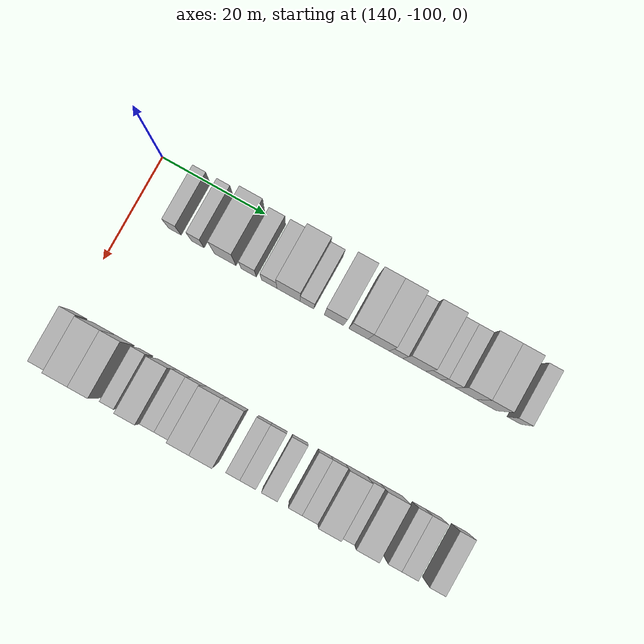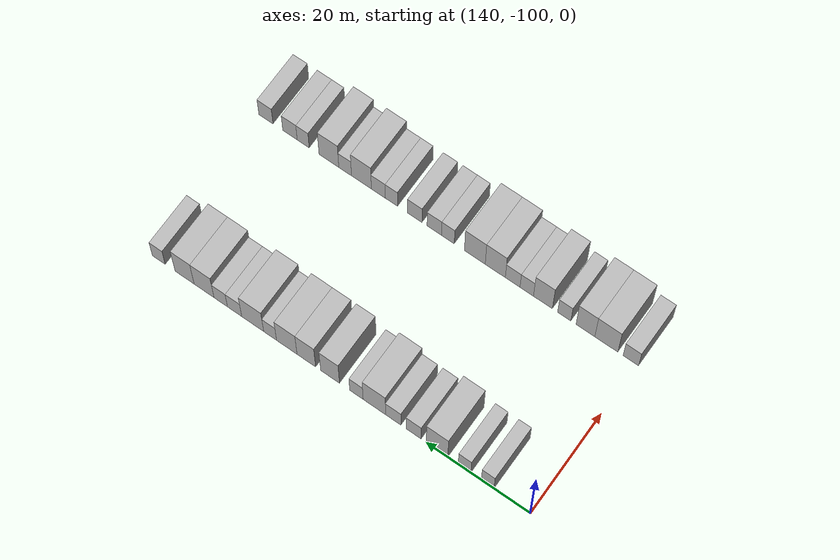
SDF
<sdf version="1.6">
 <world name="default">
  <model name="building_1045">
   <static>1</static>
   <pose>145.0000 -91.8463 0 0.000000 0.000000 0.000000</pose>
   <link name="link">
    <pose>0 0 3.00 0 0 0</pose>
    <collision name="collision"><geometry><box><size>10.0000 2.4295 6.0000</size></box></geometry></collision>
    <visual name="visual">
     <cast_shadows>0</cast_shadows>
     <geometry><box><size>10.0000 2.4295 6.0000</size></box></geometry>
     <material>
      <script>
       <uri>model://HANNAS_wall/materials/scripts</uri>
       <uri>model://HANNAS_wall/materials/textures</uri>
       <name>vrc/HANNAS_wall</name>
      </script>
     </material>
    </visual>
   </link>
  </model>
  <model name="building_1046">
   <static>1</static>
   <pose>145.0000 -87.4148 0 0.000000 0.000000 0.000000</pose>
   <link name="link">
    <pose>0 0 3.00 0 0 0</pose>
    <collision name="collision"><geometry><box><size>10.0000 2.4335 6.0000</size></box></geometry></collision>
    <visual name="visual">
     <cast_shadows>0</cast_shadows>
     <geometry><box><size>10.0000 2.4335 6.0000</size></box></geometry>
     <material>
      <script>
       <uri>model://HANNAS_wall/materials/scripts</uri>
       <uri>model://HANNAS_wall/materials/textures</uri>
       <name>vrc/HANNAS_wall</name>
      </script>
     </material>
    </visual>
   </link>
  </model>
  <model name="building_1047">
   <static>1</static>
   <pose>145.0000 -82.1263 0 0.000000 0.000000 0.000000</pose>
   <link name="link">
    <pose>0 0 4.50 0 0 0</pose>
    <collision name="collision"><geometry><box><size>10.0000 4.1435 9.0000</size></box></geometry></collision>
    <visual name="visual">
     <cast_shadows>0</cast_shadows>
     <geometry><box><size>10.0000 4.1435 9.0000</size></box></geometry>
     <material>
      <script>
       <uri>model://HANNAS_wall/materials/scripts</uri>
       <uri>model://HANNAS_wall/materials/textures</uri>
       <name>vrc/HANNAS_wall</name>
      </script>
     </material>
    </visual>
   </link>
  </model>
  <model name="building_1048">
   <static>1</static>
   <pose>145.0000 -77.5956 0 0.000000 0.000000 0.000000</pose>
   <link name="link">
    <pose>0 0 3.00 0 0 0</pose>
    <collision name="collision"><geometry><box><size>10.0000 2.9179 6.0000</size></box></geometry></collision>
    <visual name="visual">
     <cast_shadows>0</cast_shadows>
     <geometry><box><size>10.0000 2.9179 6.0000</size></box></geometry>
     <material>
      <script>
       <uri>model://HANNAS_wall/materials/scripts</uri>
       <uri>model://HANNAS_wall/materials/textures</uri>
       <name>vrc/HANNAS_wall</name>
      </script>
     </material>
    </visual>
   </link>
  </model>
  <model name="building_1049">
   <static>1</static>
   <pose>145.0000 -73.6486 0 0.000000 0.000000 0.000000</pose>
   <link name="link">
    <pose>0 0 3.00 0 0 0</pose>
    <collision name="collision"><geometry><box><size>10.0000 2.9761 6.0000</size></box></geometry></collision>
    <visual name="visual">
     <cast_shadows>0</cast_shadows>
     <geometry><box><size>10.0000 2.9761 6.0000</size></box></geometry>
     <material>
      <script>
       <uri>model://HANNAS_wall/materials/scripts</uri>
       <uri>model://HANNAS_wall/materials/textures</uri>
       <name>vrc/HANNAS_wall</name>
      </script>
     </material>
    </visual>
   </link>
  </model>
  <model name="building_1050">
   <static>1</static>
   <pose>145.0000 -69.9521 0 0.000000 0.000000 0.000000</pose>
   <link name="link">
    <pose>0 0 4.50 0 0 0</pose>
    <collision name="collision"><geometry><box><size>10.0000 4.4168 9.0000</size></box></geometry></collision>
    <visual name="visual">
     <cast_shadows>0</cast_shadows>
     <geometry><box><size>10.0000 4.4168 9.0000</size></box></geometry>
     <material>
      <script>
       <uri>model://HANNAS_wall/materials/scripts</uri>
       <uri>model://HANNAS_wall/materials/textures</uri>
       <name>vrc/HANNAS_wall</name>
      </script>
     </material>
    </visual>
   </link>
  </model>
  <model name="building_1051">
   <static>1</static>
   <pose>145.0000 -66.4311 0 0.000000 0.000000 0.000000</pose>
   <link name="link">
    <pose>0 0 3.00 0 0 0</pose>
    <collision name="collision"><geometry><box><size>10.0000 2.6254 6.0000</size></box></geometry></collision>
    <visual name="visual">
     <cast_shadows>0</cast_shadows>
     <geometry><box><size>10.0000 2.6254 6.0000</size></box></geometry>
     <material>
      <script>
       <uri>model://HANNAS_wall/materials/scripts</uri>
       <uri>model://HANNAS_wall/materials/textures</uri>
       <name>vrc/HANNAS_wall</name>
      </script>
     </material>
    </visual>
   </link>
  </model>
  <model name="building_1052">
   <static>1</static>
   <pose>145.0000 -61.2684 0 0.000000 0.000000 0.000000</pose>
   <link name="link">
    <pose>0 0 4.50 0 0 0</pose>
    <collision name="collision"><geometry><box><size>10.0000 3.7000 9.0000</size></box></geometry></collision>
    <visual name="visual">
     <cast_shadows>0</cast_shadows>
     <geometry><box><size>10.0000 3.7000 9.0000</size></box></geometry>
     <material>
      <script>
       <uri>model://HANNAS_wall/materials/scripts</uri>
       <uri>model://HANNAS_wall/materials/textures</uri>
       <name>vrc/HANNAS_wall</name>
      </script>
     </material>
    </visual>
   </link>
  </model>
  <model name="building_1053">
   <static>1</static>
   <pose>145.0000 -56.5807 0 0.000000 0.000000 0.000000</pose>
   <link name="link">
    <pose>0 0 4.50 0 0 0</pose>
    <collision name="collision"><geometry><box><size>10.0000 3.6754 9.0000</size></box></geometry></collision>
    <visual name="visual">
     <cast_shadows>0</cast_shadows>
     <geometry><box><size>10.0000 3.6754 9.0000</size></box></geometry>
     <material>
      <script>
       <uri>model://HANNAS_wall/materials/scripts</uri>
       <uri>model://HANNAS_wall/materials/textures</uri>
       <name>vrc/HANNAS_wall</name>
      </script>
     </material>
    </visual>
   </link>
  </model>
  <model name="building_1054">
   <static>1</static>
   <pose>145.0000 -52.7117 0 0.000000 0.000000 0.000000</pose>
   <link name="link">
    <pose>0 0 4.50 0 0 0</pose>
    <collision name="collision"><geometry><box><size>10.0000 4.0626 9.0000</size></box></geometry></collision>
    <visual name="visual">
     <cast_shadows>0</cast_shadows>
     <geometry><box><size>10.0000 4.0626 9.0000</size></box></geometry>
     <material>
      <script>
       <uri>model://HANNAS_wall/materials/scripts</uri>
       <uri>model://HANNAS_wall/materials/textures</uri>
       <name>vrc/HANNAS_wall</name>
      </script>
     </material>
    </visual>
   </link>
  </model>
  <model name="building_1055">
   <static>1</static>
   <pose>145.0000 -49.3933 0 0.000000 0.000000 0.000000</pose>
   <link name="link">
    <pose>0 0 3.00 0 0 0</pose>
    <collision name="collision"><geometry><box><size>10.0000 2.5742 6.0000</size></box></geometry></collision>
    <visual name="visual">
     <cast_shadows>0</cast_shadows>
     <geometry><box><size>10.0000 2.5742 6.0000</size></box></geometry>
     <material>
      <script>
       <uri>model://HANNAS_wall/materials/scripts</uri>
       <uri>model://HANNAS_wall/materials/textures</uri>
       <name>vrc/HANNAS_wall</name>
      </script>
     </material>
    </visual>
   </link>
  </model>
  <model name="building_1056">
   <static>1</static>
   <pose>145.0000 -45.9082 0 0.000000 0.000000 0.000000</pose>
   <link name="link">
    <pose>0 0 4.50 0 0 0</pose>
    <collision name="collision"><geometry><box><size>10.0000 4.3960 9.0000</size></box></geometry></collision>
    <visual name="visual">
     <cast_shadows>0</cast_shadows>
     <geometry><box><size>10.0000 4.3960 9.0000</size></box></geometry>
     <material>
      <script>
       <uri>model://HANNAS_wall/materials/scripts</uri>
       <uri>model://HANNAS_wall/materials/textures</uri>
       <name>vrc/HANNAS_wall</name>
      </script>
     </material>
    </visual>
   </link>
  </model>
  <model name="building_1057">
   <static>1</static>
   <pose>145.0000 -42.2828 0 0.000000 0.000000 0.000000</pose>
   <link name="link">
    <pose>0 0 3.00 0 0 0</pose>
    <collision name="collision"><geometry><box><size>10.0000 2.8549 6.0000</size></box></geometry></collision>
    <visual name="visual">
     <cast_shadows>0</cast_shadows>
     <geometry><box><size>10.0000 2.8549 6.0000</size></box></geometry>
     <material>
      <script>
       <uri>model://HANNAS_wall/materials/scripts</uri>
       <uri>model://HANNAS_wall/materials/textures</uri>
       <name>vrc/HANNAS_wall</name>
      </script>
     </material>
    </visual>
   </link>
  </model>
  <model name="building_1058">
   <static>1</static>
   <pose>145.0000 -39.5016 0 0.000000 0.000000 0.000000</pose>
   <link name="link">
    <pose>0 0 3.00 0 0 0</pose>
    <collision name="collision"><geometry><box><size>10.0000 2.7074 6.0000</size></box></geometry></collision>
    <visual name="visual">
     <cast_shadows>0</cast_shadows>
     <geometry><box><size>10.0000 2.7074 6.0000</size></box></geometry>
     <material>
      <script>
       <uri>model://HANNAS_wall/materials/scripts</uri>
       <uri>model://HANNAS_wall/materials/textures</uri>
       <name>vrc/HANNAS_wall</name>
      </script>
     </material>
    </visual>
   </link>
  </model>
  <model name="building_1059">
   <static>1</static>
   <pose>145.0000 -36.1405 0 0.000000 0.000000 0.000000</pose>
   <link name="link">
    <pose>0 0 4.50 0 0 0</pose>
    <collision name="collision"><geometry><box><size>10.0000 4.0148 9.0000</size></box></geometry></collision>
    <visual name="visual">
     <cast_shadows>0</cast_shadows>
     <geometry><box><size>10.0000 4.0148 9.0000</size></box></geometry>
     <material>
      <script>
       <uri>model://HANNAS_wall/materials/scripts</uri>
       <uri>model://HANNAS_wall/materials/textures</uri>
       <name>vrc/HANNAS_wall</name>
      </script>
     </material>
    </visual>
   </link>
  </model>
  <model name="building_1060">
   <static>1</static>
   <pose>145.0000 -32.2034 0 0.000000 0.000000 0.000000</pose>
   <link name="link">
    <pose>0 0 4.50 0 0 0</pose>
    <collision name="collision"><geometry><box><size>10.0000 3.8592 9.0000</size></box></geometry></collision>
    <visual name="visual">
     <cast_shadows>0</cast_shadows>
     <geometry><box><size>10.0000 3.8592 9.0000</size></box></geometry>
     <material>
      <script>
       <uri>model://HANNAS_wall/materials/scripts</uri>
       <uri>model://HANNAS_wall/materials/textures</uri>
       <name>vrc/HANNAS_wall</name>
      </script>
     </material>
    </visual>
   </link>
  </model>
  <model name="building_1061">
   <static>1</static>
   <pose>145.0000 -26.9695 0 0.000000 0.000000 0.000000</pose>
   <link name="link">
    <pose>0 0 3.00 0 0 0</pose>
    <collision name="collision"><geometry><box><size>10.0000 2.6087 6.0000</size></box></geometry></collision>
    <visual name="visual">
     <cast_shadows>0</cast_shadows>
     <geometry><box><size>10.0000 2.6087 6.0000</size></box></geometry>
     <material>
      <script>
       <uri>model://HANNAS_wall/materials/scripts</uri>
       <uri>model://HANNAS_wall/materials/textures</uri>
       <name>vrc/HANNAS_wall</name>
      </script>
     </material>
    </visual>
   </link>
  </model>
  <model name="building_1281">
   <static>1</static>
   <pose>175.0000 -98.8841 0 0.000000 0.000000 0.000000</pose>
   <link name="link">
    <pose>0 0 3.00 0 0 0</pose>
    <collision name="collision"><geometry><box><size>10.0000 2.9786 6.0000</size></box></geometry></collision>
    <visual name="visual">
     <cast_shadows>0</cast_shadows>
     <geometry><box><size>10.0000 2.9786 6.0000</size></box></geometry>
     <material>
      <script>
       <uri>model://HANNAS_wall/materials/scripts</uri>
       <uri>model://HANNAS_wall/materials/textures</uri>
       <name>vrc/HANNAS_wall</name>
      </script>
     </material>
    </visual>
   </link>
  </model>
  <model name="building_1282">
   <static>1</static>
   <pose>175.0000 -94.1681 0 0.000000 0.000000 0.000000</pose>
   <link name="link">
    <pose>0 0 4.50 0 0 0</pose>
    <collision name="collision"><geometry><box><size>10.0000 4.4535 9.0000</size></box></geometry></collision>
    <visual name="visual">
     <cast_shadows>0</cast_shadows>
     <geometry><box><size>10.0000 4.4535 9.0000</size></box></geometry>
     <material>
      <script>
       <uri>model://HANNAS_wall/materials/scripts</uri>
       <uri>model://HANNAS_wall/materials/textures</uri>
       <name>vrc/HANNAS_wall</name>
      </script>
     </material>
    </visual>
   </link>
  </model>
  <model name="building_1283">
   <static>1</static>
   <pose>175.0000 -90.1235 0 0.000000 0.000000 0.000000</pose>
   <link name="link">
    <pose>0 0 4.50 0 0 0</pose>
    <collision name="collision"><geometry><box><size>10.0000 3.6357 9.0000</size></box></geometry></collision>
    <visual name="visual">
     <cast_shadows>0</cast_shadows>
     <geometry><box><size>10.0000 3.6357 9.0000</size></box></geometry>
     <material>
      <script>
       <uri>model://HANNAS_wall/materials/scripts</uri>
       <uri>model://HANNAS_wall/materials/textures</uri>
       <name>vrc/HANNAS_wall</name>
      </script>
     </material>
    </visual>
   </link>
  </model>
  <model name="building_1284">
   <static>1</static>
   <pose>175.0000 -86.0100 0 0.000000 0.000000 0.000000</pose>
   <link name="link">
    <pose>0 0 3.00 0 0 0</pose>
    <collision name="collision"><geometry><box><size>10.0000 2.5913 6.0000</size></box></geometry></collision>
    <visual name="visual">
     <cast_shadows>0</cast_shadows>
     <geometry><box><size>10.0000 2.5913 6.0000</size></box></geometry>
     <material>
      <script>
       <uri>model://HANNAS_wall/materials/scripts</uri>
       <uri>model://HANNAS_wall/materials/textures</uri>
       <name>vrc/HANNAS_wall</name>
      </script>
     </material>
    </visual>
   </link>
  </model>
  <model name="building_1285">
   <static>1</static>
   <pose>175.0000 -81.8653 0 0.000000 0.000000 0.000000</pose>
   <link name="link">
    <pose>0 0 4.50 0 0 0</pose>
    <collision name="collision"><geometry><box><size>10.0000 3.6982 9.0000</size></box></geometry></collision>
    <visual name="visual">
     <cast_shadows>0</cast_shadows>
     <geometry><box><size>10.0000 3.6982 9.0000</size></box></geometry>
     <material>
      <script>
       <uri>model://HANNAS_wall/materials/scripts</uri>
       <uri>model://HANNAS_wall/materials/textures</uri>
       <name>vrc/HANNAS_wall</name>
      </script>
     </material>
    </visual>
   </link>
  </model>
  <model name="building_1286">
   <static>1</static>
   <pose>175.0000 -78.6978 0 0.000000 0.000000 0.000000</pose>
   <link name="link">
    <pose>0 0 3.00 0 0 0</pose>
    <collision name="collision"><geometry><box><size>10.0000 2.6367 6.0000</size></box></geometry></collision>
    <visual name="visual">
     <cast_shadows>0</cast_shadows>
     <geometry><box><size>10.0000 2.6367 6.0000</size></box></geometry>
     <material>
      <script>
       <uri>model://HANNAS_wall/materials/scripts</uri>
       <uri>model://HANNAS_wall/materials/textures</uri>
       <name>vrc/HANNAS_wall</name>
      </script>
     </material>
    </visual>
   </link>
  </model>
  <model name="building_1287">
   <static>1</static>
   <pose>175.0000 -75.9393 0 0.000000 0.000000 0.000000</pose>
   <link name="link">
    <pose>0 0 3.00 0 0 0</pose>
    <collision name="collision"><geometry><box><size>10.0000 2.8805 6.0000</size></box></geometry></collision>
    <visual name="visual">
     <cast_shadows>0</cast_shadows>
     <geometry><box><size>10.0000 2.8805 6.0000</size></box></geometry>
     <material>
      <script>
       <uri>model://HANNAS_wall/materials/scripts</uri>
       <uri>model://HANNAS_wall/materials/textures</uri>
       <name>vrc/HANNAS_wall</name>
      </script>
     </material>
    </visual>
   </link>
  </model>
  <model name="building_1288">
   <static>1</static>
   <pose>175.0000 -72.5213 0 0.000000 0.000000 0.000000</pose>
   <link name="link">
    <pose>0 0 4.50 0 0 0</pose>
    <collision name="collision"><geometry><box><size>10.0000 3.9554 9.0000</size></box></geometry></collision>
    <visual name="visual">
     <cast_shadows>0</cast_shadows>
     <geometry><box><size>10.0000 3.9554 9.0000</size></box></geometry>
     <material>
      <script>
       <uri>model://HANNAS_wall/materials/scripts</uri>
       <uri>model://HANNAS_wall/materials/textures</uri>
       <name>vrc/HANNAS_wall</name>
      </script>
     </material>
    </visual>
   </link>
  </model>
  <model name="building_1289">
   <static>1</static>
   <pose>175.0000 -68.4875 0 0.000000 0.000000 0.000000</pose>
   <link name="link">
    <pose>0 0 4.50 0 0 0</pose>
    <collision name="collision"><geometry><box><size>10.0000 4.1124 9.0000</size></box></geometry></collision>
    <visual name="visual">
     <cast_shadows>0</cast_shadows>
     <geometry><box><size>10.0000 4.1124 9.0000</size></box></geometry>
     <material>
      <script>
       <uri>model://HANNAS_wall/materials/scripts</uri>
       <uri>model://HANNAS_wall/materials/textures</uri>
       <name>vrc/HANNAS_wall</name>
      </script>
     </material>
    </visual>
   </link>
  </model>
  <model name="building_1290">
   <static>1</static>
   <pose>175.0000 -63.1584 0 0.000000 0.000000 0.000000</pose>
   <link name="link">
    <pose>0 0 3.00 0 0 0</pose>
    <collision name="collision"><geometry><box><size>10.0000 2.5456 6.0000</size></box></geometry></collision>
    <visual name="visual">
     <cast_shadows>0</cast_shadows>
     <geometry><box><size>10.0000 2.5456 6.0000</size></box></geometry>
     <material>
      <script>
       <uri>model://HANNAS_wall/materials/scripts</uri>
       <uri>model://HANNAS_wall/materials/textures</uri>
       <name>vrc/HANNAS_wall</name>
      </script>
     </material>
    </visual>
   </link>
  </model>
  <model name="building_1291">
   <static>1</static>
   <pose>175.0000 -60.4470 0 0.000000 0.000000 0.000000</pose>
   <link name="link">
    <pose>0 0 3.00 0 0 0</pose>
    <collision name="collision"><geometry><box><size>10.0000 2.8772 6.0000</size></box></geometry></collision>
    <visual name="visual">
     <cast_shadows>0</cast_shadows>
     <geometry><box><size>10.0000 2.8772 6.0000</size></box></geometry>
     <material>
      <script>
       <uri>model://HANNAS_wall/materials/scripts</uri>
       <uri>model://HANNAS_wall/materials/textures</uri>
       <name>vrc/HANNAS_wall</name>
      </script>
     </material>
    </visual>
   </link>
  </model>
  <model name="building_1292">
   <static>1</static>
   <pose>175.0000 -56.5634 0 0.000000 0.000000 0.000000</pose>
   <link name="link">
    <pose>0 0 3.00 0 0 0</pose>
    <collision name="collision"><geometry><box><size>10.0000 2.8900 6.0000</size></box></geometry></collision>
    <visual name="visual">
     <cast_shadows>0</cast_shadows>
     <geometry><box><size>10.0000 2.8900 6.0000</size></box></geometry>
     <material>
      <script>
       <uri>model://HANNAS_wall/materials/scripts</uri>
       <uri>model://HANNAS_wall/materials/textures</uri>
       <name>vrc/HANNAS_wall</name>
      </script>
     </material>
    </visual>
   </link>
  </model>
  <model name="building_1293">
   <static>1</static>
   <pose>175.0000 -51.8923 0 0.000000 0.000000 0.000000</pose>
   <link name="link">
    <pose>0 0 3.00 0 0 0</pose>
    <collision name="collision"><geometry><box><size>10.0000 2.4522 6.0000</size></box></geometry></collision>
    <visual name="visual">
     <cast_shadows>0</cast_shadows>
     <geometry><box><size>10.0000 2.4522 6.0000</size></box></geometry>
     <material>
      <script>
       <uri>model://HANNAS_wall/materials/scripts</uri>
       <uri>model://HANNAS_wall/materials/textures</uri>
       <name>vrc/HANNAS_wall</name>
      </script>
     </material>
    </visual>
   </link>
  </model>
  <model name="building_1294">
   <static>1</static>
   <pose>175.0000 -49.2588 0 0.000000 0.000000 0.000000</pose>
   <link name="link">
    <pose>0 0 3.00 0 0 0</pose>
    <collision name="collision"><geometry><box><size>10.0000 2.8147 6.0000</size></box></geometry></collision>
    <visual name="visual">
     <cast_shadows>0</cast_shadows>
     <geometry><box><size>10.0000 2.8147 6.0000</size></box></geometry>
     <material>
      <script>
       <uri>model://HANNAS_wall/materials/scripts</uri>
       <uri>model://HANNAS_wall/materials/textures</uri>
       <name>vrc/HANNAS_wall</name>
      </script>
     </material>
    </visual>
   </link>
  </model>
  <model name="building_1295">
   <static>1</static>
   <pose>175.0000 -45.8452 0 0.000000 0.000000 0.000000</pose>
   <link name="link">
    <pose>0 0 4.50 0 0 0</pose>
    <collision name="collision"><geometry><box><size>10.0000 4.0126 9.0000</size></box></geometry></collision>
    <visual name="visual">
     <cast_shadows>0</cast_shadows>
     <geometry><box><size>10.0000 4.0126 9.0000</size></box></geometry>
     <material>
      <script>
       <uri>model://HANNAS_wall/materials/scripts</uri>
       <uri>model://HANNAS_wall/materials/textures</uri>
       <name>vrc/HANNAS_wall</name>
      </script>
     </material>
    </visual>
   </link>
  </model>
  <model name="building_1296">
   <static>1</static>
   <pose>175.0000 -42.5524 0 0.000000 0.000000 0.000000</pose>
   <link name="link">
    <pose>0 0 3.00 0 0 0</pose>
    <collision name="collision"><geometry><box><size>10.0000 2.5728 6.0000</size></box></geometry></collision>
    <visual name="visual">
     <cast_shadows>0</cast_shadows>
     <geometry><box><size>10.0000 2.5728 6.0000</size></box></geometry>
     <material>
      <script>
       <uri>model://HANNAS_wall/materials/scripts</uri>
       <uri>model://HANNAS_wall/materials/textures</uri>
       <name>vrc/HANNAS_wall</name>
      </script>
     </material>
    </visual>
   </link>
  </model>
  <model name="building_1297">
   <static>1</static>
   <pose>175.0000 -39.2625 0 0.000000 0.000000 0.000000</pose>
   <link name="link">
    <pose>0 0 4.50 0 0 0</pose>
    <collision name="collision"><geometry><box><size>10.0000 4.0071 9.0000</size></box></geometry></collision>
    <visual name="visual">
     <cast_shadows>0</cast_shadows>
     <geometry><box><size>10.0000 4.0071 9.0000</size></box></geometry>
     <material>
      <script>
       <uri>model://HANNAS_wall/materials/scripts</uri>
       <uri>model://HANNAS_wall/materials/textures</uri>
       <name>vrc/HANNAS_wall</name>
      </script>
     </material>
    </visual>
   </link>
  </model>
  <model name="building_1298">
   <static>1</static>
   <pose>175.0000 -34.0313 0 0.000000 0.000000 0.000000</pose>
   <link name="link">
    <pose>0 0 3.00 0 0 0</pose>
    <collision name="collision"><geometry><box><size>10.0000 2.4551 6.0000</size></box></geometry></collision>
    <visual name="visual">
     <cast_shadows>0</cast_shadows>
     <geometry><box><size>10.0000 2.4551 6.0000</size></box></geometry>
     <material>
      <script>
       <uri>model://HANNAS_wall/materials/scripts</uri>
       <uri>model://HANNAS_wall/materials/textures</uri>
       <name>vrc/HANNAS_wall</name>
      </script>
     </material>
    </visual>
   </link>
  </model>
  <model name="building_1299">
   <static>1</static>
   <pose>175.0000 -31.3294 0 0.000000 0.000000 0.000000</pose>
   <link name="link">
    <pose>0 0 3.00 0 0 0</pose>
    <collision name="collision"><geometry><box><size>10.0000 2.9488 6.0000</size></box></geometry></collision>
    <visual name="visual">
     <cast_shadows>0</cast_shadows>
     <geometry><box><size>10.0000 2.9488 6.0000</size></box></geometry>
     <material>
      <script>
       <uri>model://HANNAS_wall/materials/scripts</uri>
       <uri>model://HANNAS_wall/materials/textures</uri>
       <name>vrc/HANNAS_wall</name>
      </script>
     </material>
    </visual>
   </link>
  </model>
  <model name="building_1300">
   <static>1</static>
   <pose>175.0000 -26.4004 0 0.000000 0.000000 0.000000</pose>
   <link name="link">
    <pose>0 0 3.00 0 0 0</pose>
    <collision name="collision"><geometry><box><size>10.0000 2.9091 6.0000</size></box></geometry></collision>
    <visual name="visual">
     <cast_shadows>0</cast_shadows>
     <geometry><box><size>10.0000 2.9091 6.0000</size></box></geometry>
     <material>
      <script>
       <uri>model://HANNAS_wall/materials/scripts</uri>
       <uri>model://HANNAS_wall/materials/textures</uri>
       <name>vrc/HANNAS_wall</name>
      </script>
     </material>
    </visual>
   </link>
  </model>
 </world>
</sdf>
